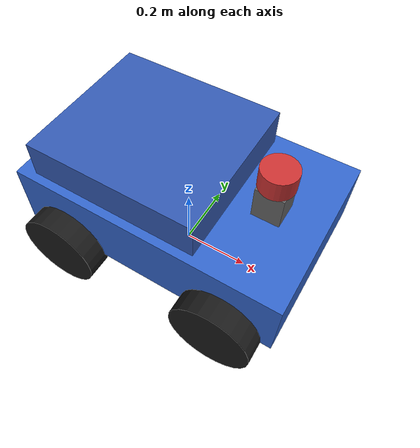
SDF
<?xml version="1.0"?>
<sdf version="1.9">
  <model name="cd2_car">
    <static>false</static>

    <!-- ======================== BASE LINK ======================== -->
    <link name="base_link">
      <pose>0 0 0.22 0 0 0</pose>

      <inertial>
        <mass>10.0</mass>
        <inertia>
          <ixx>0.229167</ixx>
          <ixy>0</ixy>
          <ixz>0</ixz>
          <iyy>0.570833</iyy>
          <iyz>0</iyz>
          <izz>0.741667</izz>
        </inertia>
      </inertial>

      <visual name="chassis_visual">
        <geometry>
          <box>
            <size>0.8 0.5 0.2</size>
          </box>
        </geometry>
        <material>
          <ambient>0.2 0.4 0.8 1.0</ambient>
          <diffuse>0.2 0.4 0.8 1.0</diffuse>
        </material>
      </visual>

      <collision name="chassis_collision">
        <geometry>
          <box>
            <size>0.8 0.5 0.2</size>
          </box>
        </geometry>
      </collision>

      <!-- TRẦN XE (ROOF) - nằm trên thân xe -->
      <visual name="roof_visual">
        <pose>-0.1 0 0.12 0 0 0</pose>
        <geometry>
          <box>
            <size>0.5 0.45 0.18</size>
          </box>
        </geometry>
        <material>
          <ambient>0.15 0.3 0.6 1.0</ambient>
          <diffuse>0.2 0.35 0.7 1.0</diffuse>
        </material>
      </visual>

      <collision name="roof_collision">
        <pose>-0.1 0 0.15 0 0 0</pose>
        <geometry>
          <box>
            <size>0.5 0.45 0.08</size>
          </box>
        </geometry>
      </collision>

      <!-- TRỤ ĐỠ LIDAR - kết nối thân xe với LiDAR -->
      <visual name="lidar_mount_visual">
        <pose>0.25 0 0.12 0 0 0</pose>
        <geometry>
          <box>
            <size>0.08 0.08 0.16</size>
          </box>
        </geometry>
        <material>
          <ambient>0.3 0.3 0.3 1.0</ambient>
          <diffuse>0.4 0.4 0.4 1.0</diffuse>
        </material>
      </visual>

      <collision name="lidar_mount_collision">
        <pose>0.25 0 0.12 0 0 0</pose>
        <geometry>
          <box>
            <size>0.08 0.08 0.16</size>
          </box>
        </geometry>
      </collision>
    </link>

    <!-- ======================== LASER LINK ======================== -->
    <link name="laser_link">
      <!-- Đặt trên trụ đỡ, gắn chắc vào xe -->
      <pose relative_to="base_link">0.25 0 0.23 0 0 0</pose>

      <inertial>
        <mass>0.2</mass>
        <inertia>
          <ixx>0.0001</ixx>
          <ixy>0</ixy>
          <ixz>0</ixz>
          <iyy>0.0001</iyy>
          <iyz>0</iyz>
          <izz>0.0001</izz>
        </inertia>
      </inertial>

      <visual name="lidar_visual">
        <geometry>
          <cylinder>
            <radius>0.05</radius>
            <length>0.06</length>
          </cylinder>
        </geometry>
        <material>
          <ambient>0.8 0.2 0.2 1.0</ambient>
          <diffuse>0.8 0.2 0.2 1.0</diffuse>
        </material>
      </visual>

      <collision name="lidar_collision">
        <geometry>
          <cylinder>
            <radius>0.05</radius>
            <length>0.06</length>
          </cylinder>
        </geometry>
      </collision>

      <!--
        GPU LIDAR SENSOR - QUAN TRỌNG!!!
        Phải dùng type="gpu_lidar" trong SDF, KHÔNG dùng "lidar"
        Gazebo Sim 8 chỉ hỗ trợ gpu_lidar, ray sensor không được hỗ trợ
      -->
      <sensor name="gpu_lidar" type="gpu_lidar">
        <pose>0 0 0.03 0 0 0</pose>
        <topic>/scan</topic>
        <update_rate>10</update_rate>
        <always_on>true</always_on>
        <visualize>true</visualize>
        <gz_frame_id>laser_link</gz_frame_id>
        <lidar>
          <scan>
            <horizontal>
              <samples>360</samples>
              <resolution>1</resolution>
              <min_angle>-3.14159</min_angle>
              <max_angle>3.14159</max_angle>
            </horizontal>
          </scan>
          <range>
            <min>0.15</min>
            <max>10.0</max>
            <resolution>0.01</resolution>
          </range>
          <noise>
            <type>gaussian</type>
            <mean>0.0</mean>
            <stddev>0.01</stddev>
          </noise>
        </lidar>
      </sensor>
    </link>

    <joint name="laser_joint" type="fixed">
      <parent>base_link</parent>
      <child>laser_link</child>
    </joint>

    <!-- ======================== REAR LEFT WHEEL ======================== -->
    <link name="rear_left_wheel">
      <pose relative_to="base_link">-0.25 0.275 -0.1 -1.5708 0 0</pose>

      <inertial>
        <mass>1.0</mass>
        <inertia>
          <ixx>0.00414</ixx>
          <ixy>0</ixy>
          <ixz>0</ixz>
          <iyy>0.00414</iyy>
          <iyz>0</iyz>
          <izz>0.0072</izz>
        </inertia>
      </inertial>

      <visual name="wheel_visual">
        <geometry>
          <cylinder>
            <radius>0.12</radius>
            <length>0.08</length>
          </cylinder>
        </geometry>
        <material>
          <ambient>0.1 0.1 0.1 1.0</ambient>
          <diffuse>0.1 0.1 0.1 1.0</diffuse>
        </material>
      </visual>

      <collision name="wheel_collision">
        <geometry>
          <cylinder>
            <radius>0.12</radius>
            <length>0.08</length>
          </cylinder>
        </geometry>
        <surface>
          <friction>
            <ode>
              <mu>1.0</mu>
              <mu2>1.0</mu2>
            </ode>
          </friction>
        </surface>
      </collision>
    </link>

    <joint name="rear_left_wheel_joint" type="revolute">
      <parent>base_link</parent>
      <child>rear_left_wheel</child>
      <axis>
        <xyz>0 0 1</xyz>
        <limit>
          <lower>-1e16</lower>
          <upper>1e16</upper>
        </limit>
      </axis>
    </joint>

    <!-- ======================== REAR RIGHT WHEEL ======================== -->
    <link name="rear_right_wheel">
      <pose relative_to="base_link">-0.25 -0.275 -0.1 -1.5708 0 0</pose>

      <inertial>
        <mass>1.0</mass>
        <inertia>
          <ixx>0.00414</ixx>
          <ixy>0</ixy>
          <ixz>0</ixz>
          <iyy>0.00414</iyy>
          <iyz>0</iyz>
          <izz>0.0072</izz>
        </inertia>
      </inertial>

      <visual name="wheel_visual">
        <geometry>
          <cylinder>
            <radius>0.12</radius>
            <length>0.08</length>
          </cylinder>
        </geometry>
        <material>
          <ambient>0.1 0.1 0.1 1.0</ambient>
          <diffuse>0.1 0.1 0.1 1.0</diffuse>
        </material>
      </visual>

      <collision name="wheel_collision">
        <geometry>
          <cylinder>
            <radius>0.12</radius>
            <length>0.08</length>
          </cylinder>
        </geometry>
        <surface>
          <friction>
            <ode>
              <mu>1.0</mu>
              <mu2>1.0</mu2>
            </ode>
          </friction>
        </surface>
      </collision>
    </link>

    <joint name="rear_right_wheel_joint" type="revolute">
      <parent>base_link</parent>
      <child>rear_right_wheel</child>
      <axis>
        <xyz>0 0 1</xyz>
        <limit>
          <lower>-1e16</lower>
          <upper>1e16</upper>
        </limit>
      </axis>
    </joint>

    <!-- ======================== FRONT LEFT WHEEL (CASTER) ======================== -->
    <link name="front_left_wheel">
      <pose relative_to="base_link">0.25 0.275 -0.1 -1.5708 0 0</pose>

      <inertial>
        <mass>1.0</mass>
        <inertia>
          <ixx>0.00414</ixx>
          <ixy>0</ixy>
          <ixz>0</ixz>
          <iyy>0.00414</iyy>
          <iyz>0</iyz>
          <izz>0.0072</izz>
        </inertia>
      </inertial>

      <visual name="wheel_visual">
        <geometry>
          <cylinder>
            <radius>0.12</radius>
            <length>0.08</length>
          </cylinder>
        </geometry>
        <material>
          <ambient>0.1 0.1 0.1 1.0</ambient>
          <diffuse>0.1 0.1 0.1 1.0</diffuse>
        </material>
      </visual>

      <collision name="wheel_collision">
        <geometry>
          <cylinder>
            <radius>0.12</radius>
            <length>0.08</length>
          </cylinder>
        </geometry>
        <surface>
          <friction>
            <ode>
              <mu>0.0</mu>
              <mu2>0.0</mu2>
            </ode>
          </friction>
        </surface>
      </collision>
    </link>

    <joint name="front_left_wheel_joint" type="revolute">
      <parent>base_link</parent>
      <child>front_left_wheel</child>
      <axis>
        <xyz>0 0 1</xyz>
        <limit>
          <lower>-1e16</lower>
          <upper>1e16</upper>
        </limit>
      </axis>
    </joint>

    <!-- ======================== FRONT RIGHT WHEEL (CASTER) ======================== -->
    <link name="front_right_wheel">
      <pose relative_to="base_link">0.25 -0.275 -0.1 -1.5708 0 0</pose>

      <inertial>
        <mass>1.0</mass>
        <inertia>
          <ixx>0.00414</ixx>
          <ixy>0</ixy>
          <ixz>0</ixz>
          <iyy>0.00414</iyy>
          <iyz>0</iyz>
          <izz>0.0072</izz>
        </inertia>
      </inertial>

      <visual name="wheel_visual">
        <geometry>
          <cylinder>
            <radius>0.12</radius>
            <length>0.08</length>
          </cylinder>
        </geometry>
        <material>
          <ambient>0.1 0.1 0.1 1.0</ambient>
          <diffuse>0.1 0.1 0.1 1.0</diffuse>
        </material>
      </visual>

      <collision name="wheel_collision">
        <geometry>
          <cylinder>
            <radius>0.12</radius>
            <length>0.08</length>
          </cylinder>
        </geometry>
        <surface>
          <friction>
            <ode>
              <mu>0.0</mu>
              <mu2>0.0</mu2>
            </ode>
          </friction>
        </surface>
      </collision>
    </link>

    <joint name="front_right_wheel_joint" type="revolute">
      <parent>base_link</parent>
      <child>front_right_wheel</child>
      <axis>
        <xyz>0 0 1</xyz>
        <limit>
          <lower>-1e16</lower>
          <upper>1e16</upper>
        </limit>
      </axis>
    </joint>

    <!-- ======================== PLUGINS ======================== -->

    <!-- DIFF DRIVE PLUGIN - Điều khiển 2 bánh sau -->
    <plugin filename="gz-sim-diff-drive-system" name="gz::sim::systems::DiffDrive">
      <left_joint>rear_left_wheel_joint</left_joint>
      <right_joint>rear_right_wheel_joint</right_joint>
      <wheel_separation>0.55</wheel_separation>
      <wheel_radius>0.12</wheel_radius>
      <max_linear_acceleration>5.0</max_linear_acceleration>
      <min_linear_acceleration>-5.0</min_linear_acceleration>
      <max_angular_acceleration>4.0</max_angular_acceleration>
      <min_angular_acceleration>-4.0</min_angular_acceleration>
      <topic>/cmd_vel</topic>
      <odom_topic>/odom</odom_topic>
      <tf_topic>/tf</tf_topic>
      <frame_id>odom</frame_id>
      <child_frame_id>base_link</child_frame_id>
      <odom_publish_frequency>50</odom_publish_frequency>
    </plugin>

    <!-- JOINT STATE PUBLISHER -->
    <plugin filename="gz-sim-joint-state-publisher-system" name="gz::sim::systems::JointStatePublisher">
      <topic>/joint_states</topic>
      <joint_name>rear_left_wheel_joint</joint_name>
      <joint_name>rear_right_wheel_joint</joint_name>
      <joint_name>front_left_wheel_joint</joint_name>
      <joint_name>front_right_wheel_joint</joint_name>
    </plugin>

  </model>
</sdf>
